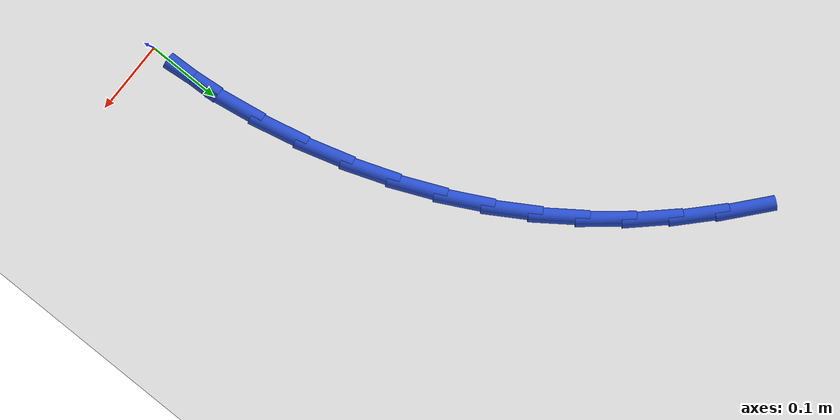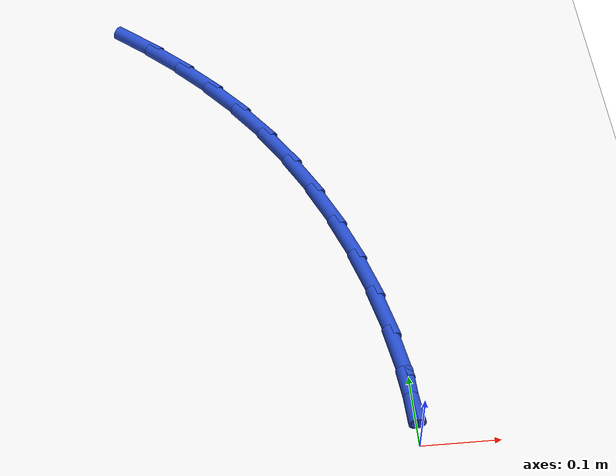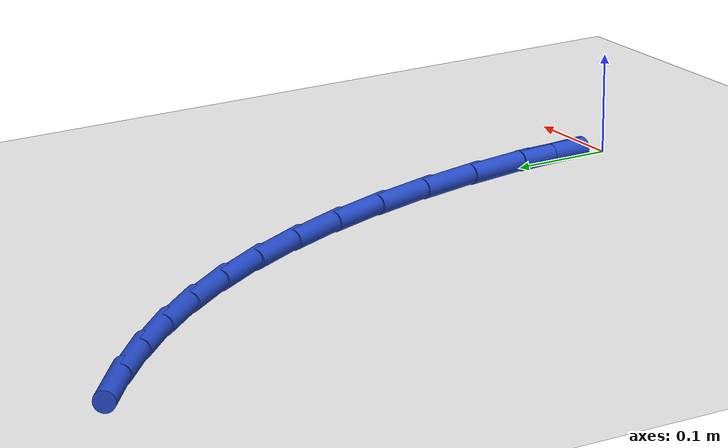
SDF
<sdf version="1.6">
 <world name="default">
  <model name="ground_plane">
   <static>1</static>
   <link name="link">
    <collision name="collision">
     <geometry><plane><normal>0 0 1</normal><size>100 100</size></plane></geometry>
     <surface><friction><ode><mu>100</mu><mu2>50</mu2></ode></friction></surface>
    </collision>
    <visual name="visual">
     <cast_shadows>0</cast_shadows>
     <geometry><plane><normal>0 0 1</normal><size>100 100</size></plane></geometry>
     <material>
      <script><uri>file://media/materials/scripts/gazebo.material</uri><name>Gazebo/WhiteGlow</name></script>
     </material>
    </visual>
   </link>
  </model>
  <model name="line">
   <link name="link_1">
    <pose>-0.0025182484179131406 0.06498172688750542 0.01 0 1.57 -1.4685668699671746</pose>
    <collision name="collision">
     <geometry><cylinder><radius>0.01</radius><length>0.08</length></cylinder></geometry>
    </collision>
    <visual name="visual">
     <material>
      <script><name>Gazebo/Blue</name><uri>file://media/materials/scripts/gazebo.material</uri></script>
     </material>
     <geometry><cylinder><radius>0.01</radius><length>0.08</length></cylinder></geometry>
    </visual>
   </link>
   <link name="link_2">
    <pose>-0.009162279642974345 0.12974652173655962 0.01 0 1.57 -1.4062968883293872</pose>
    <collision name="collision">
     <geometry><cylinder><radius>0.01</radius><length>0.08</length></cylinder></geometry>
    </collision>
    <visual name="visual">
     <material>
      <script><name>Gazebo/Blue</name><uri>file://media/materials/scripts/gazebo.material</uri></script>
     </material>
     <geometry><cylinder><radius>0.01</radius><length>0.08</length></cylinder></geometry>
    </visual>
   </link>
   <link name="link_3">
    <pose>-0.019812431801927884 0.19390427148009032 0.01 0 1.57 -1.3445824564775564</pose>
    <collision name="collision">
     <geometry><cylinder><radius>0.01</radius><length>0.08</length></cylinder></geometry>
    </collision>
    <visual name="visual">
     <material>
      <script><name>Gazebo/Blue</name><uri>file://media/materials/scripts/gazebo.material</uri></script>
     </material>
     <geometry><cylinder><radius>0.01</radius><length>0.08</length></cylinder></geometry>
    </visual>
   </link>
   <link name="link_4">
    <pose>-0.034349043021518116 0.25706486305102516 0.01 0 1.57 -1.2827378679395725</pose>
    <collision name="collision">
     <geometry><cylinder><radius>0.01</radius><length>0.08</length></cylinder></geometry>
    </collision>
    <visual name="visual">
     <material>
      <script><name>Gazebo/Blue</name><uri>file://media/materials/scripts/gazebo.material</uri></script>
     </material>
     <geometry><cylinder><radius>0.01</radius><length>0.08</length></cylinder></geometry>
    </visual>
   </link>
   <link name="link_5">
    <pose>-0.052652451428489386 0.3188381833822914 0.01 0 1.57 -1.2200564563144218</pose>
    <collision name="collision">
     <geometry><cylinder><radius>0.01</radius><length>0.08</length></cylinder></geometry>
    </collision>
    <visual name="visual">
     <material>
      <script><name>Gazebo/Blue</name><uri>file://media/materials/scripts/gazebo.material</uri></script>
     </material>
     <geometry><cylinder><radius>0.01</radius><length>0.08</length></cylinder></geometry>
    </visual>
   </link>
   <link name="link_6">
    <pose>-0.074602995149586 0.3788341194068167 0.01 0 1.57 -1.1558041574276856</pose>
    <collision name="collision">
     <geometry><cylinder><radius>0.01</radius><length>0.08</length></cylinder></geometry>
    </collision>
    <visual name="visual">
     <material>
      <script><name>Gazebo/Blue</name><uri>file://media/materials/scripts/gazebo.material</uri></script>
     </material>
     <geometry><cylinder><radius>0.01</radius><length>0.08</length></cylinder></geometry>
    </visual>
   </link>
   <link name="link_7">
    <pose>-0.10008101231155231 0.43666255805752857 0.01 0 1.57 -1.0892142257987414</pose>
    <collision name="collision">
     <geometry><cylinder><radius>0.01</radius><length>0.08</length></cylinder></geometry>
    </collision>
    <visual name="visual">
     <material>
      <script><name>Gazebo/Blue</name><uri>file://media/materials/scripts/gazebo.material</uri></script>
     </material>
     <geometry><cylinder><radius>0.01</radius><length>0.08</length></cylinder></geometry>
    </visual>
   </link>
   <link name="link_8">
    <pose>-0.1289668410411327 0.49193338626735494 0.01 0 1.57 -1.0194863611803862</pose>
    <collision name="collision">
     <geometry><cylinder><radius>0.01</radius><length>0.08</length></cylinder></geometry>
    </collision>
    <visual name="visual">
     <material>
      <script><name>Gazebo/Blue</name><uri>file://media/materials/scripts/gazebo.material</uri></script>
     </material>
     <geometry><cylinder><radius>0.01</radius><length>0.08</length></cylinder></geometry>
    </visual>
   </link>
   <link name="link_9">
    <pose>-0.1611408186394474 0.5442565355363609 0.01 0 1.57 -0.9473005367352736</pose>
    <collision name="collision">
     <geometry><cylinder><radius>0.01</radius><length>0.08</length></cylinder></geometry>
    </collision>
    <visual name="visual">
     <material>
      <script><name>Gazebo/Blue</name><uri>file://media/materials/scripts/gazebo.material</uri></script>
     </material>
     <geometry><cylinder><radius>0.01</radius><length>0.08</length></cylinder></geometry>
    </visual>
   </link>
   <link name="link_10">
    <pose>-0.19648046547035639 0.5933939954813954 0.01 0 1.57 -0.8777334387097229</pose>
    <collision name="collision">
     <geometry><cylinder><radius>0.01</radius><length>0.08</length></cylinder></geometry>
    </collision>
    <visual name="visual">
     <material>
      <script><name>Gazebo/Blue</name><uri>file://media/materials/scripts/gazebo.material</uri></script>
     </material>
     <geometry><cylinder><radius>0.01</radius><length>0.08</length></cylinder></geometry>
    </visual>
   </link>
   <link name="link_11">
    <pose>-0.23485418935885696 0.6395996500607048 0.01 0 1.57 -0.8131014256491025</pose>
    <collision name="collision">
     <geometry><cylinder><radius>0.01</radius><length>0.08</length></cylinder></geometry>
    </collision>
    <visual name="visual">
     <material>
      <script><name>Gazebo/Blue</name><uri>file://media/materials/scripts/gazebo.material</uri></script>
     </material>
     <geometry><cylinder><radius>0.01</radius><length>0.08</length></cylinder></geometry>
    </visual>
   </link>
   <link name="link_12">
    <pose>-0.2761285588617723 0.6832266668263893 0.01 0 1.57 -0.7545098111122983</pose>
    <collision name="collision">
     <geometry><cylinder><radius>0.01</radius><length>0.08</length></cylinder></geometry>
    </collision>
    <visual name="visual">
     <material>
      <script><name>Gazebo/Blue</name><uri>file://media/materials/scripts/gazebo.material</uri></script>
     </material>
     <geometry><cylinder><radius>0.01</radius><length>0.08</length></cylinder></geometry>
    </visual>
   </link>
   <link name="link_13">
    <pose>-0.3201701425359253 0.7246282133305483 0.01 0 1.57 -0.7026900519517123</pose>
    <collision name="collision">
     <geometry><cylinder><radius>0.01</radius><length>0.08</length></cylinder></geometry>
    </collision>
    <visual name="visual">
     <material>
      <script><name>Gazebo/Blue</name><uri>file://media/materials/scripts/gazebo.material</uri></script>
     </material>
     <geometry><cylinder><radius>0.01</radius><length>0.08</length></cylinder></geometry>
    </visual>
   </link>
   <link name="link_111">
    <pose>-0.0025477131201671506 0.065001122496898 0.01 0 1.57 -1.5316214696564194</pose>
    <collision name="collision">
     <geometry><cylinder><radius>0.01</radius><length>0.08</length></cylinder></geometry>
    </collision>
    <visual name="visual">
     <material>
      <script><name>Gazebo/Blue</name><uri>file://media/materials/scripts/gazebo.material</uri></script>
     </material>
     <geometry><cylinder><radius>0.01</radius><length>0.08</length></cylinder></geometry>
    </visual>
   </link>
  </model>
 </world>
</sdf>
